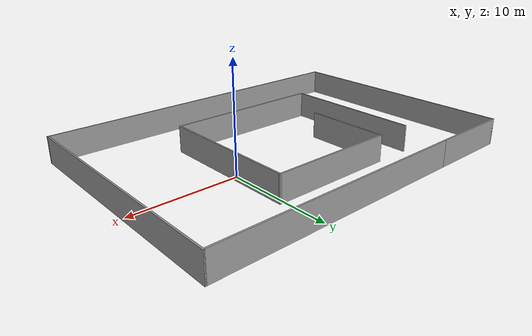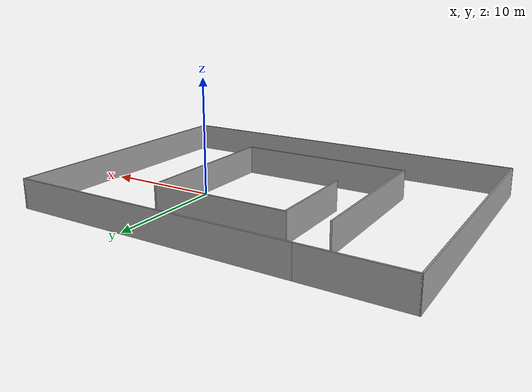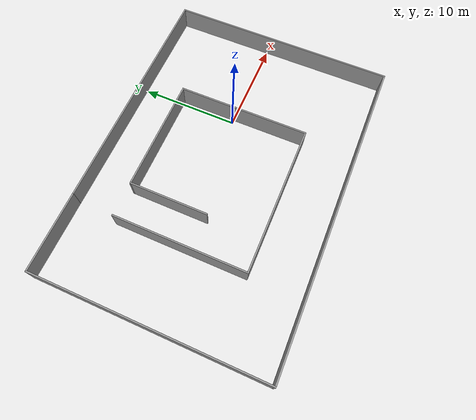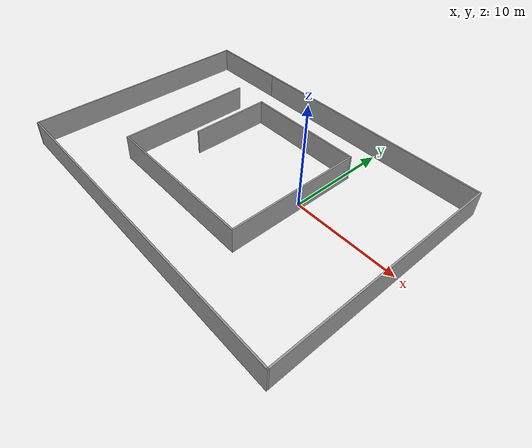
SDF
<?xml version='1.0'?>
<sdf version='1.6'>
  <model name='biger'>
    <pose frame=''>-6.01913 -1.38749 0 0 -0 0</pose>
    <link name='Wall_10'>
      <collision name='Wall_10_Collision'>
        <geometry>
          <box>
            <size>23.25 0.15 2.5</size>
          </box>
        </geometry>
        <pose frame=''>0 0 1.25 0 -0 0</pose>
      </collision>
      <visual name='Wall_10_Visual'>
        <pose frame=''>0 0 1.25 0 -0 0</pose>
        <geometry>
          <box>
            <size>23.25 0.15 2.5</size>
          </box>
        </geometry>
        <material>
          <script>
            <uri>file://media/materials/scripts/gazebo.material</uri>
            <name>Gazebo/Grey</name>
          </script>
          <ambient>1 1 1 1</ambient>
        </material>
        <meta>
          <layer>0</layer>
        </meta>
      </visual>
      <pose frame=''>-16.175 0 0 0 -0 1.5708</pose>
    </link>
    <link name='Wall_11'>
      <collision name='Wall_11_Collision'>
        <geometry>
          <box>
            <size>8 0.15 2.5</size>
          </box>
        </geometry>
        <pose frame=''>0 0 1.25 0 -0 0</pose>
      </collision>
      <visual name='Wall_11_Visual'>
        <pose frame=''>0 0 1.25 0 -0 0</pose>
        <geometry>
          <box>
            <size>8 0.15 2.5</size>
          </box>
        </geometry>
        <material>
          <script>
            <uri>file://media/materials/scripts/gazebo.material</uri>
            <name>Gazebo/Grey</name>
          </script>
          <ambient>1 1 1 1</ambient>
        </material>
        <meta>
          <layer>0</layer>
        </meta>
      </visual>
      <pose frame=''>-12.25 11.55 0 0 -0 0</pose>
    </link>
    <link name='Wall_13'>
      <collision name='Wall_13_Collision'>
        <geometry>
          <box>
            <size>13.5 0.15 2.5</size>
          </box>
        </geometry>
        <pose frame=''>0 0 1.25 0 -0 0</pose>
      </collision>
      <visual name='Wall_13_Visual'>
        <pose frame=''>0 0 1.25 0 -0 0</pose>
        <geometry>
          <box>
            <size>13.5 0.15 2.5</size>
          </box>
        </geometry>
        <material>
          <script>
            <uri>file://media/materials/scripts/gazebo.material</uri>
            <name>Gazebo/Grey</name>
          </script>
          <ambient>1 1 1 1</ambient>
        </material>
        <meta>
          <layer>0</layer>
        </meta>
      </visual>
      <pose frame=''>-8.6703 0.488063 0 0 -0 -1.5708</pose>
    </link>
    <link name='Wall_14'>
      <collision name='Wall_14_Collision'>
        <geometry>
          <box>
            <size>15.25 0.15 2.5</size>
          </box>
        </geometry>
        <pose frame=''>0 0 1.25 0 -0 0</pose>
      </collision>
      <visual name='Wall_14_Visual'>
        <pose frame=''>0 0 1.25 0 -0 0</pose>
        <geometry>
          <box>
            <size>15.25 0.15 2.5</size>
          </box>
        </geometry>
        <material>
          <script>
            <uri>file://media/materials/scripts/gazebo.material</uri>
            <name>Gazebo/Grey</name>
          </script>
          <ambient>1 1 1 1</ambient>
        </material>
        <meta>
          <layer>0</layer>
        </meta>
      </visual>
      <pose frame=''>-1.1203 -6.18694 0 0 -0 0</pose>
    </link>
    <link name='Wall_15'>
      <collision name='Wall_15_Collision'>
        <geometry>
          <box>
            <size>13.5 0.15 2.5</size>
          </box>
        </geometry>
        <pose frame=''>0 0 1.25 0 -0 0</pose>
      </collision>
      <visual name='Wall_15_Visual'>
        <pose frame=''>0 0 1.25 0 -0 0</pose>
        <geometry>
          <box>
            <size>13.5 0.15 2.5</size>
          </box>
        </geometry>
        <material>
          <script>
            <uri>file://media/materials/scripts/gazebo.material</uri>
            <name>Gazebo/Grey</name>
          </script>
          <ambient>1 1 1 1</ambient>
        </material>
        <meta>
          <layer>0</layer>
        </meta>
      </visual>
      <pose frame=''>6.4297 0.488063 0 0 -0 1.5708</pose>
    </link>
    <link name='Wall_16'>
      <collision name='Wall_16_Collision'>
        <geometry>
          <box>
            <size>11.75 0.15 2.5</size>
          </box>
        </geometry>
        <pose frame=''>0 0 1.25 0 -0 0</pose>
      </collision>
      <visual name='Wall_16_Visual'>
        <pose frame=''>0 0 1.25 0 -0 0</pose>
        <geometry>
          <box>
            <size>11.75 0.15 2.5</size>
          </box>
        </geometry>
        <material>
          <script>
            <uri>file://media/materials/scripts/gazebo.material</uri>
            <name>Gazebo/Grey</name>
          </script>
          <ambient>1 1 1 1</ambient>
        </material>
        <meta>
          <layer>0</layer>
        </meta>
      </visual>
      <pose frame=''>0.6297 7.16306 0 0 -0 3.14159</pose>
    </link>
    <link name='Wall_17'>
      <collision name='Wall_17_Collision'>
        <geometry>
          <box>
            <size>8 0.15 2.5</size>
          </box>
        </geometry>
        <pose frame=''>0 0 1.25 0 -0 0</pose>
      </collision>
      <visual name='Wall_17_Visual'>
        <pose frame=''>0 0 1.25 0 -0 0</pose>
        <geometry>
          <box>
            <size>8 0.15 2.5</size>
          </box>
        </geometry>
        <material>
          <script>
            <uri>file://media/materials/scripts/gazebo.material</uri>
            <name>Gazebo/Grey</name>
          </script>
          <ambient>1 1 1 1</ambient>
        </material>
        <meta>
          <layer>0</layer>
        </meta>
      </visual>
      <pose frame=''>-5.1703 3.23806 0 0 -0 -1.5708</pose>
    </link>
    <link name='Wall_6'>
      <collision name='Wall_6_Collision'>
        <geometry>
          <box>
            <size>24.5 0.15 2.5</size>
          </box>
        </geometry>
        <pose frame=''>0 0 1.25 0 -0 0</pose>
      </collision>
      <visual name='Wall_6_Visual'>
        <pose frame=''>0 0 1.25 0 -0 0</pose>
        <geometry>
          <box>
            <size>24.5 0.15 2.5</size>
          </box>
        </geometry>
        <material>
          <script>
            <uri>file://media/materials/scripts/gazebo.material</uri>
            <name>Gazebo/Grey</name>
          </script>
          <ambient>1 1 1 1</ambient>
        </material>
        <meta>
          <layer>0</layer>
        </meta>
      </visual>
      <pose frame=''>4 11.55 0 0 -0 0</pose>
    </link>
    <link name='Wall_8'>
      <collision name='Wall_8_Collision'>
        <geometry>
          <box>
            <size>23.25 0.15 2.5</size>
          </box>
        </geometry>
        <pose frame=''>0 0 1.25 0 -0 0</pose>
      </collision>
      <visual name='Wall_8_Visual'>
        <pose frame=''>0 0 1.25 0 -0 0</pose>
        <geometry>
          <box>
            <size>23.25 0.15 2.5</size>
          </box>
        </geometry>
        <material>
          <script>
            <uri>file://media/materials/scripts/gazebo.material</uri>
            <name>Gazebo/Grey</name>
          </script>
          <ambient>1 1 1 1</ambient>
        </material>
        <meta>
          <layer>0</layer>
        </meta>
      </visual>
      <pose frame=''>16.175 0 0 0 -0 -1.5708</pose>
    </link>
    <link name='Wall_9'>
      <collision name='Wall_9_Collision'>
        <geometry>
          <box>
            <size>32.5 0.15 2.5</size>
          </box>
        </geometry>
        <pose frame=''>0 0 1.25 0 -0 0</pose>
      </collision>
      <visual name='Wall_9_Visual'>
        <pose frame=''>0 0 1.25 0 -0 0</pose>
        <geometry>
          <box>
            <size>32.5 0.15 2.5</size>
          </box>
        </geometry>
        <material>
          <script>
            <uri>file://media/materials/scripts/gazebo.material</uri>
            <name>Gazebo/Grey</name>
          </script>
          <ambient>1 1 1 1</ambient>
        </material>
        <meta>
          <layer>0</layer>
        </meta>
      </visual>
      <pose frame=''>-0 -11.55 0 0 -0 3.14159</pose>
    </link>
    <static>1</static>
  </model>
</sdf>
